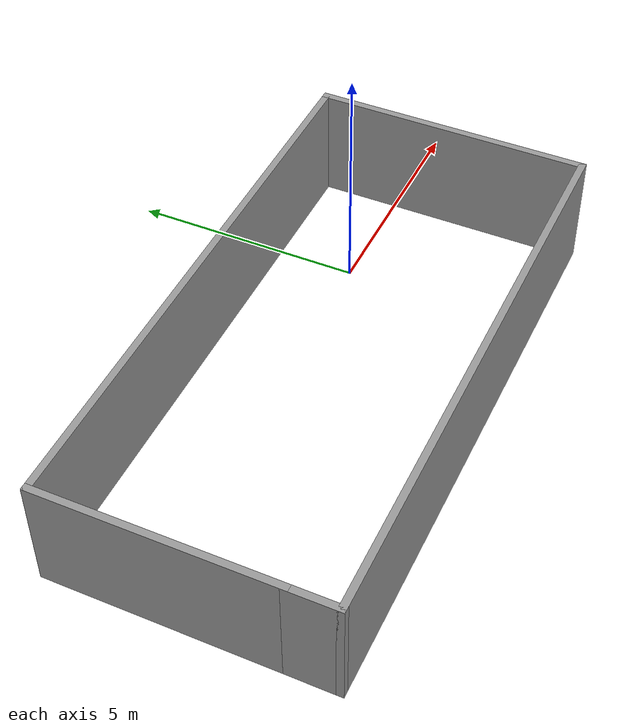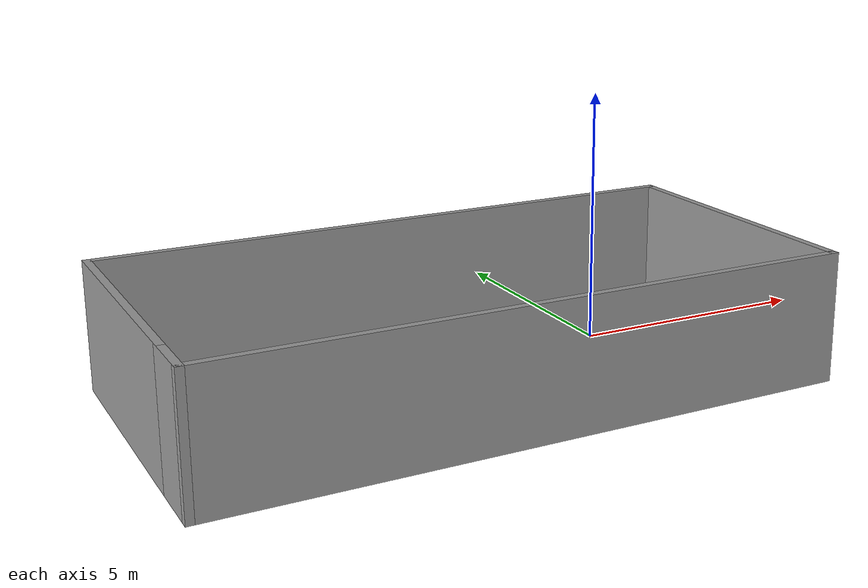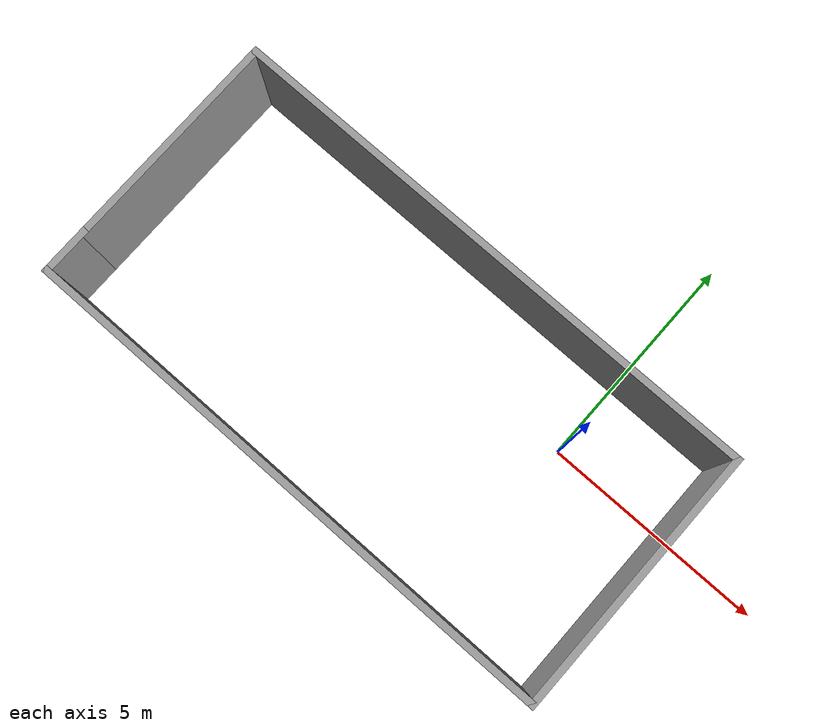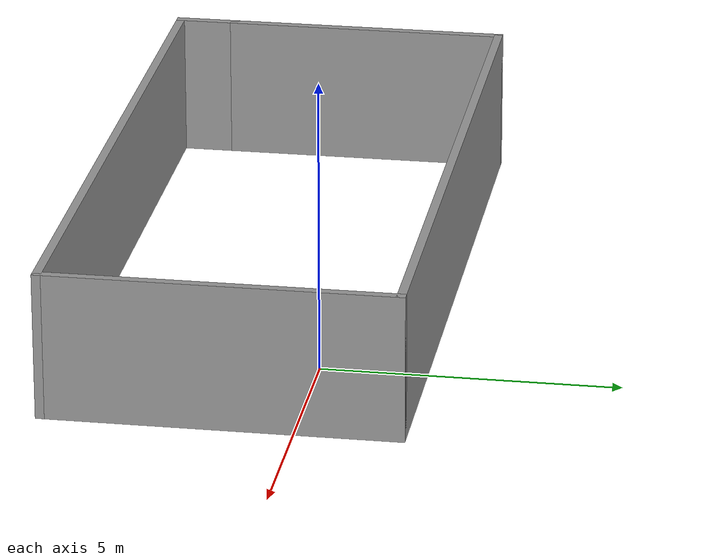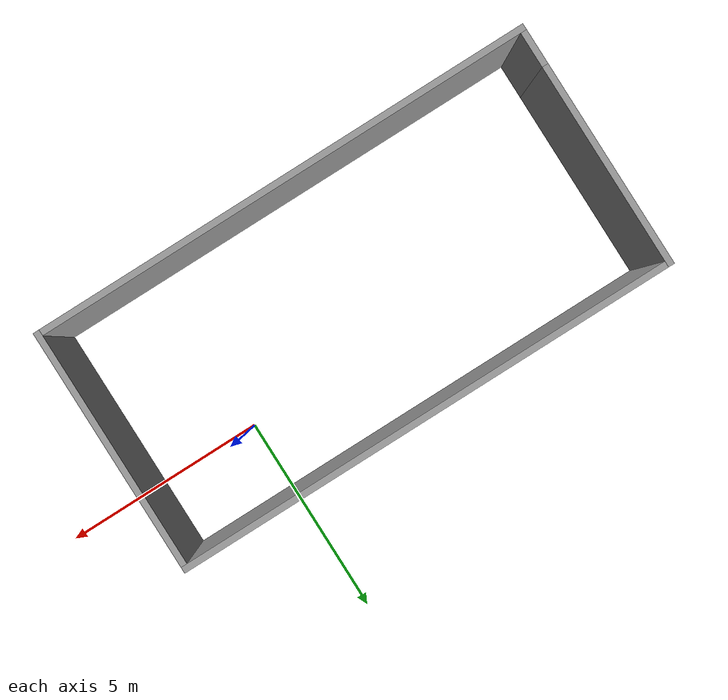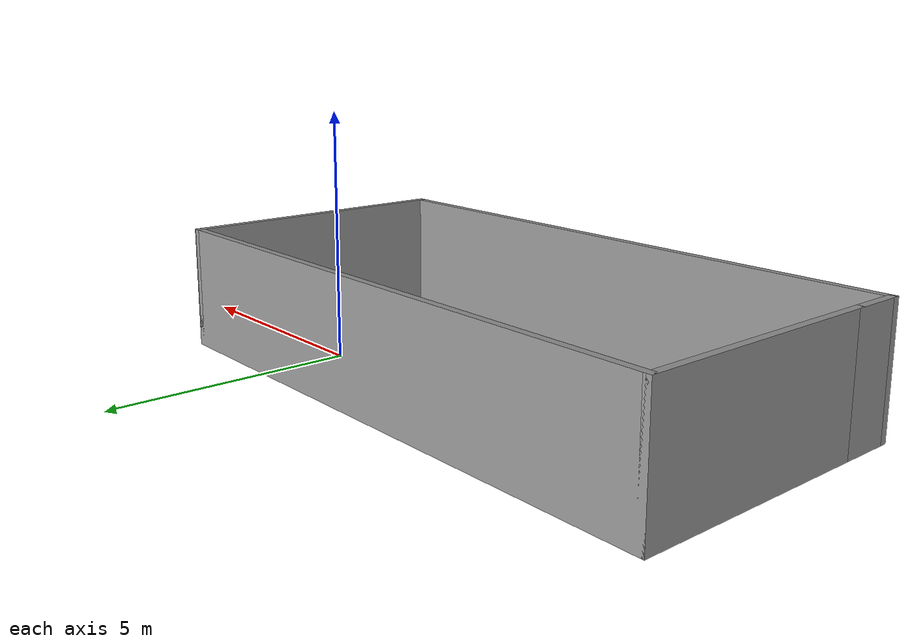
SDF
<?xml version='1.0'?>
<sdf version='1.7'>
  <model name='Untitled'>
    <pose>-3.49822 -1.19894 0 0 -0 0</pose>
    <link name='Wall_0'>
      <collision name='Wall_0_Collision'>
        <geometry>
          <box>
            <size>5 0.15 2.5</size>
          </box>
        </geometry>
        <pose>0 0 1.25 0 -0 0</pose>
      </collision>
      <visual name='Wall_0_Visual'>
        <pose>0 0 1.25 0 -0 0</pose>
        <geometry>
          <box>
            <size>5 0.15 2.5</size>
          </box>
        </geometry>
        <material>
          <script>
            <uri>file://media/materials/scripts/gazebo.material</uri>
            <name>Gazebo/Grey</name>
          </script>
          <ambient>1 1 1 1</ambient>
        </material>
        <meta>
          <layer>0</layer>
        </meta>
      </visual>
      <pose>-6.05 0.5 0 0 -0 1.5708</pose>
    </link>
    <link name='Wall_1'>
      <collision name='Wall_1_Collision'>
        <geometry>
          <box>
            <size>12.25 0.15 2.5</size>
          </box>
        </geometry>
        <pose>0 0 1.25 0 -0 0</pose>
      </collision>
      <visual name='Wall_1_Visual'>
        <pose>0 0 1.25 0 -0 0</pose>
        <geometry>
          <box>
            <size>12.25 0.15 2.5</size>
          </box>
        </geometry>
        <material>
          <script>
            <uri>file://media/materials/scripts/gazebo.material</uri>
            <name>Gazebo/Grey</name>
          </script>
          <ambient>1 1 1 1</ambient>
        </material>
        <meta>
          <layer>0</layer>
        </meta>
      </visual>
      <pose>0 2.925 0 0 -0 0</pose>
    </link>
    <link name='Wall_2'>
      <collision name='Wall_2_Collision'>
        <geometry>
          <box>
            <size>6 0.15 2.5</size>
          </box>
        </geometry>
        <pose>0 0 1.25 0 -0 0</pose>
      </collision>
      <visual name='Wall_2_Visual'>
        <pose>0 0 1.25 0 -0 0</pose>
        <geometry>
          <box>
            <size>6 0.15 2.5</size>
          </box>
        </geometry>
        <material>
          <script>
            <uri>file://media/materials/scripts/gazebo.material</uri>
            <name>Gazebo/Grey</name>
          </script>
          <ambient>1 1 1 1</ambient>
        </material>
        <meta>
          <layer>0</layer>
        </meta>
      </visual>
      <pose>6.05 -0 0 0 -0 -1.5708</pose>
    </link>
    <link name='Wall_3'>
      <collision name='Wall_3_Collision'>
        <geometry>
          <box>
            <size>12.25 0.15 2.5</size>
          </box>
        </geometry>
        <pose>0 0 1.25 0 -0 0</pose>
      </collision>
      <visual name='Wall_3_Visual'>
        <pose>0 0 1.25 0 -0 0</pose>
        <geometry>
          <box>
            <size>12.25 0.15 2.5</size>
          </box>
        </geometry>
        <material>
          <script>
            <uri>file://media/materials/scripts/gazebo.material</uri>
            <name>Gazebo/Grey</name>
          </script>
          <ambient>1 1 1 1</ambient>
        </material>
        <meta>
          <layer>0</layer>
        </meta>
      </visual>
      <pose>0 -2.925 0 0 -0 3.14159</pose>
    </link>
    <link name='Wall_4'>
      <collision name='Wall_4_Collision'>
        <geometry>
          <box>
            <size>1.15 0.15 2.5</size>
          </box>
        </geometry>
        <pose>0 0 1.25 0 -0 0</pose>
      </collision>
      <visual name='Wall_4_Visual'>
        <pose>0 0 1.25 0 -0 0</pose>
        <geometry>
          <box>
            <size>1.15 0.15 2.5</size>
          </box>
        </geometry>
        <material>
          <script>
            <uri>file://media/materials/scripts/gazebo.material</uri>
            <name>Gazebo/Grey</name>
          </script>
          <ambient>1 1 1 1</ambient>
        </material>
        <meta>
          <layer>0</layer>
        </meta>
      </visual>
      <pose>-6.05 -2.425 0 0 -0 1.5708</pose>
    </link>
    <static>1</static>
  </model>
</sdf>
